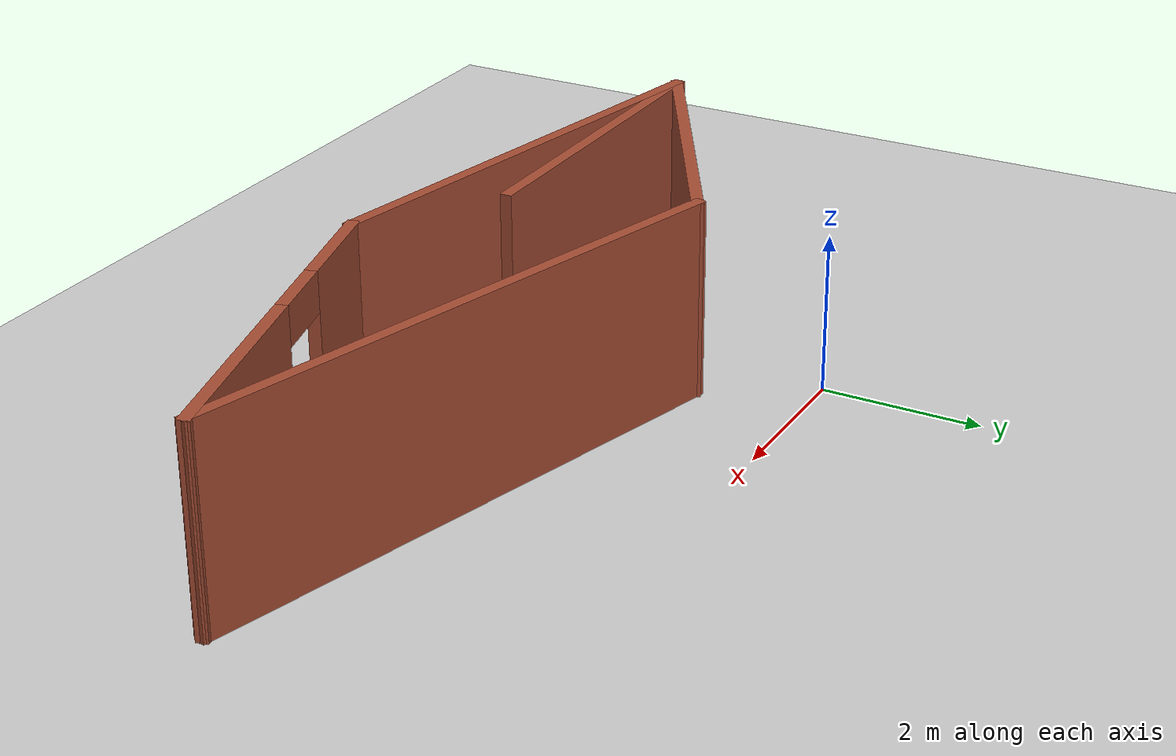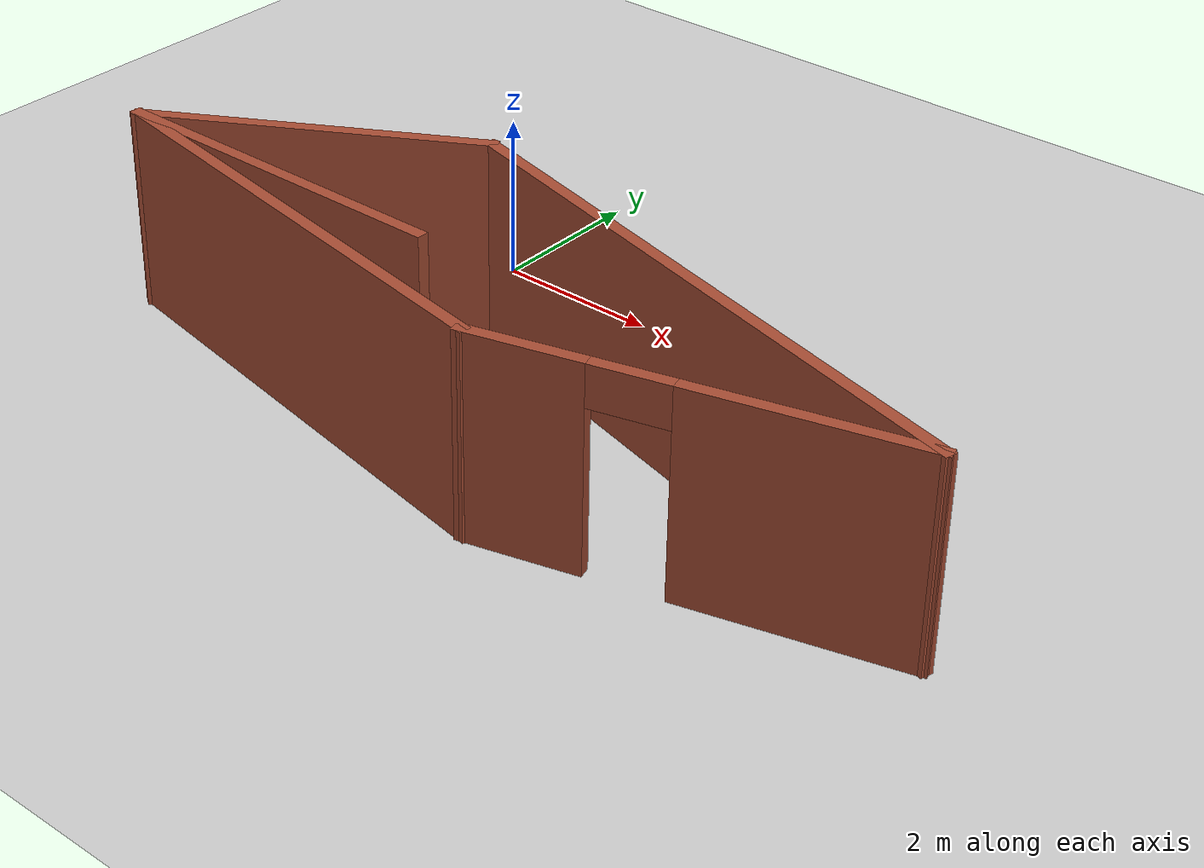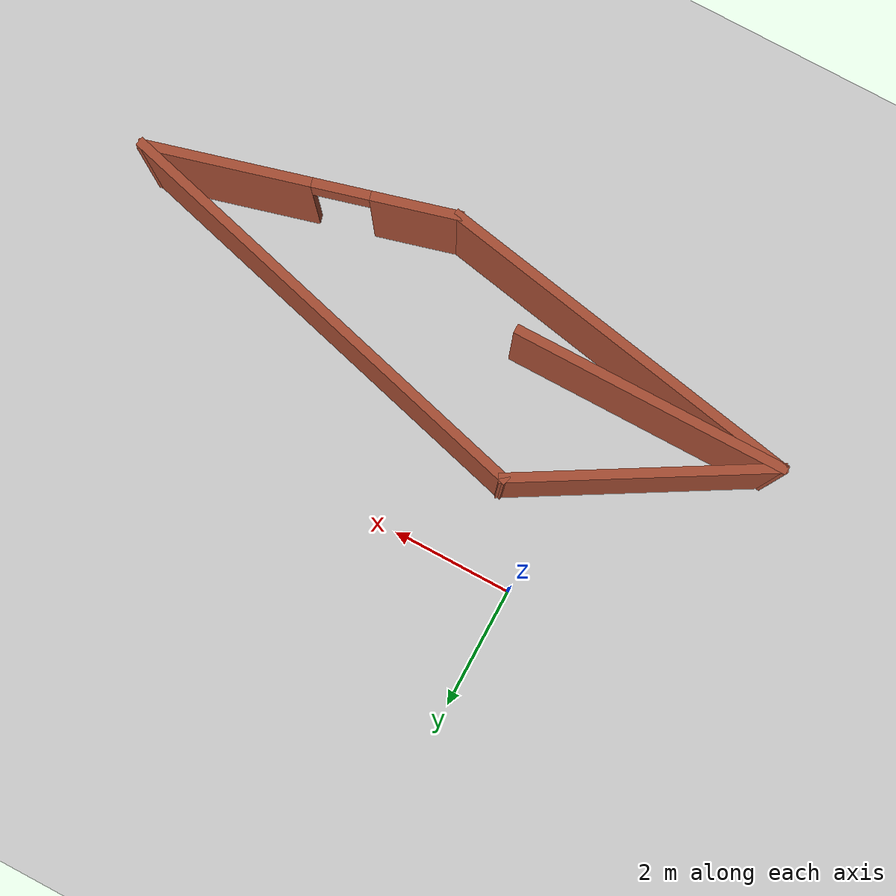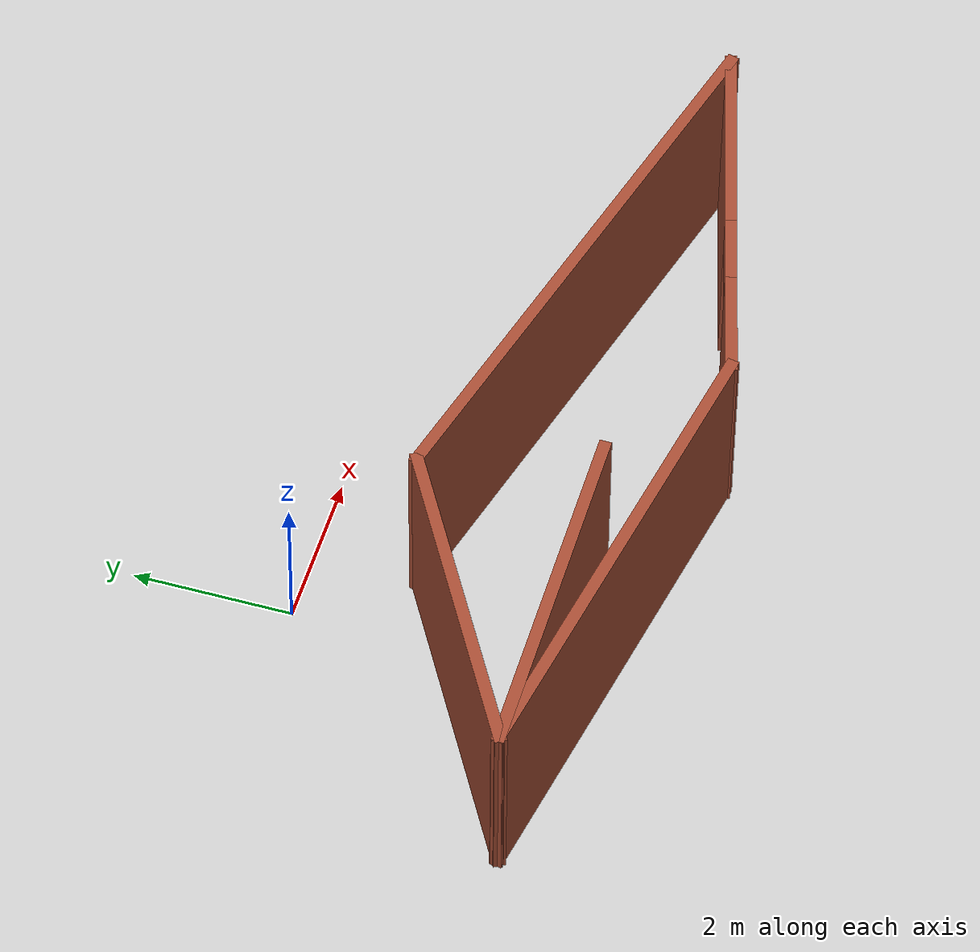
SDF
<sdf version="1.7">
 <world name="default">
  <light name="sun" type="directional">
   <pose>0 0 10 0 -0 0</pose>
   <diffuse>0.8 0.8 0.8 1</diffuse>
   <specular>0.2 0.2 0.2 1</specular>
   <attenuation>
    <range>1000</range>
    <constant>0.9</constant>
    <linear>0.01</linear>
    <quadratic>0.001</quadratic>
   </attenuation>
   <direction>-0.5 0.1 -0.9</direction>
   <spot><inner_angle>0</inner_angle><outer_angle>0</outer_angle><falloff>0</falloff></spot>
  </light>
  <model name="ground_plane">
   <static>1</static>
   <link name="link">
    <collision name="collision">
     <geometry><plane><normal>0 0 1</normal><size>100 100</size></plane></geometry>
     <surface>
      <contact><collide_bitmask>65535</collide_bitmask></contact>
      <friction><ode><mu>100</mu><mu2>50</mu2></ode></friction>
     </surface>
    </collision>
    <visual name="visual">
     <cast_shadows>0</cast_shadows>
     <geometry><plane><normal>0 0 1</normal><size>100 100</size></plane></geometry>
     <material>
      <script><uri>file://media/materials/scripts/gazebo.material</uri><name>Gazebo/Grey</name></script>
     </material>
    </visual>
   </link>
  </model>
  <gravity>0 0 -9.8</gravity>
  <magnetic_field>6e-06 2.3e-05 -4.2e-05</magnetic_field>
  <atmosphere type="adiabatic"/>
  <physics type="ode">
   <max_step_size>0.001</max_step_size>
   <real_time_factor>1</real_time_factor>
   <real_time_update_rate>1000</real_time_update_rate>
  </physics>
  <scene><ambient>0.4 0.4 0.4 1</ambient><background>0.7 0.7 0.7 1</background><shadows>1</shadows></scene>
  <spherical_coordinates>
   <surface_model>EARTH_WGS84</surface_model>
   <latitude_deg>0</latitude_deg>
   <longitude_deg>0</longitude_deg>
   <elevation>0</elevation>
   <heading_deg>0</heading_deg>
  </spherical_coordinates>
  <model name="my_world.world">
   <pose>2.61209 -2.64339 0 0 -0 0</pose>
   <link name="Wall_0">
    <collision name="Wall_0_Collision">
     <geometry><box><size>4.25 0.15 2.5</size></box></geometry>
     <pose>0 0 1.25 0 -0 0</pose>
    </collision>
    <visual name="Wall_0_Visual">
     <pose>0 0 1.25 0 -0 0</pose>
     <geometry><box><size>4.25 0.15 2.5</size></box></geometry>
     <material>
      <script><uri>file://media/materials/scripts/gazebo.material</uri><name>Gazebo/Bricks</name></script>
      <ambient>1 1 1 1</ambient>
     </material>
     <meta><layer>0</layer></meta>
    </visual>
    <pose>-3.54448 0.299724 0 0 -0 0.523599</pose>
   </link>
   <link name="Wall_1">
    <collision name="Wall_1_Collision">
     <geometry><box><size>7.5 0.15 2.5</size></box></geometry>
     <pose>0 0 1.25 0 -0 0</pose>
    </collision>
    <visual name="Wall_1_Visual">
     <pose>0 0 1.25 0 -0 0</pose>
     <geometry><box><size>7.5 0.15 2.5</size></box></geometry>
     <material>
      <script><uri>file://media/materials/scripts/gazebo.material</uri><name>Gazebo/Bricks</name></script>
      <ambient>1 1 1 1</ambient>
     </material>
     <meta><layer>0</layer></meta>
    </visual>
    <pose>1.78065 0.373564 0 0 -0 -0.261799</pose>
   </link>
   <link name="Wall_2">
    <pose>2.98806 -1.20523 0 0 -0 -2.87979</pose>
    <visual name="Wall_2_Visual_0">
     <pose>-1.16458 0 1.25 0 -0 0</pose>
     <geometry><box><size>2.67083 0.15 2.5</size></box></geometry>
     <material>
      <script><uri>file://media/materials/scripts/gazebo.material</uri><name>Gazebo/Bricks</name></script>
      <ambient>1 1 1 1</ambient>
     </material>
     <meta><layer>0</layer></meta>
    </visual>
    <collision name="Wall_2_Collision_0">
     <geometry><box><size>2.67083 0.15 2.5</size></box></geometry>
     <pose>-1.16458 0 1.25 0 -0 0</pose>
    </collision>
    <visual name="Wall_2_Visual_1">
     <pose>1.78542 0 1.25 0 -0 0</pose>
     <geometry><box><size>1.42917 0.15 2.5</size></box></geometry>
     <material>
      <script><uri>file://media/materials/scripts/gazebo.material</uri><name>Gazebo/Bricks</name></script>
      <ambient>1 1 1 1</ambient>
     </material>
     <meta><layer>0</layer></meta>
    </visual>
    <collision name="Wall_2_Collision_1">
     <geometry><box><size>1.42917 0.15 2.5</size></box></geometry>
     <pose>1.78542 0 1.25 0 -0 0</pose>
    </collision>
    <visual name="Wall_2_Visual_2">
     <pose>0.620833 0 2.25 0 -0 0</pose>
     <geometry><box><size>0.9 0.15 0.5</size></box></geometry>
     <material>
      <script><uri>file://media/materials/scripts/gazebo.material</uri><name>Gazebo/Bricks</name></script>
      <ambient>1 1 1 1</ambient>
     </material>
     <meta><layer>0</layer></meta>
    </visual>
    <collision name="Wall_2_Collision_2">
     <geometry><box><size>0.9 0.15 0.5</size></box></geometry>
     <pose>0.620833 0 2.25 0 -0 0</pose>
    </collision>
   </link>
   <link name="Wall_3">
    <collision name="Wall_3_Collision">
     <geometry><box><size>6.21747 0.15 2.5</size></box></geometry>
     <pose>0 0 1.25 0 -0 0</pose>
    </collision>
    <visual name="Wall_3_Visual">
     <pose>0 0 1.25 0 -0 0</pose>
     <geometry><box><size>6.21747 0.15 2.5</size></box></geometry>
     <material>
      <script><uri>file://media/materials/scripts/gazebo.material</uri><name>Gazebo/Bricks</name></script>
      <ambient>1 1 1 1</ambient>
     </material>
     <meta><layer>0</layer></meta>
    </visual>
    <pose>-2.33707 -1.27907 0 0 -0 2.95802</pose>
   </link>
   <link name="Wall_4">
    <collision name="Wall_4_Collision">
     <geometry><box><size>4.5 0.15 2.5</size></box></geometry>
     <pose>0 0 1.25 0 -0 0</pose>
    </collision>
    <visual name="Wall_4_Visual">
     <pose>0 0 1.25 0 -0 0</pose>
     <geometry><box><size>4.5 0.15 2.5</size></box></geometry>
     <material>
      <script><uri>file://media/materials/scripts/gazebo.material</uri><name>Gazebo/Bricks</name></script>
      <ambient>1 1 1 1</ambient>
     </material>
     <meta><layer>0</layer></meta>
    </visual>
    <pose>-3.14483 -0.725276 0 0 -0 0</pose>
   </link>
   <static>1</static>
  </model>
 </world>
</sdf>
